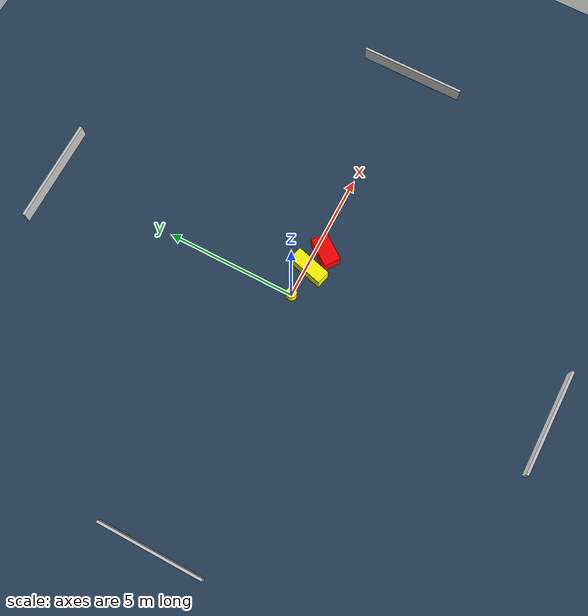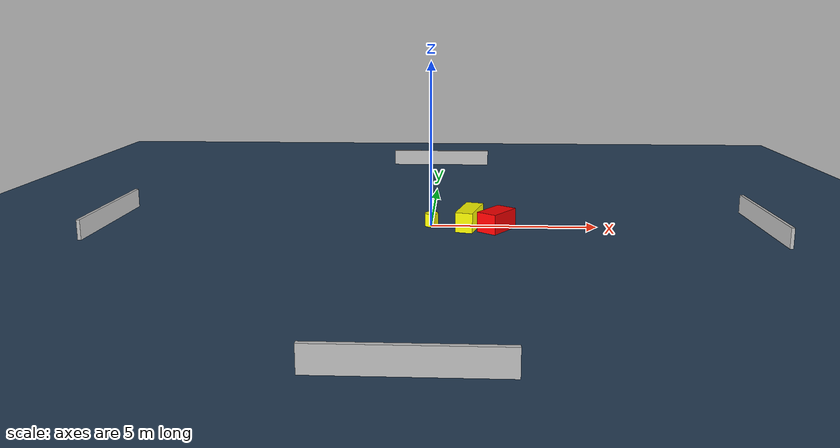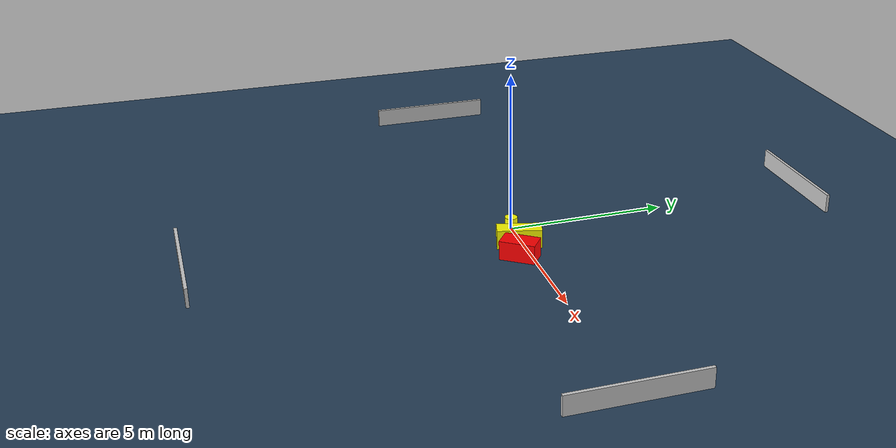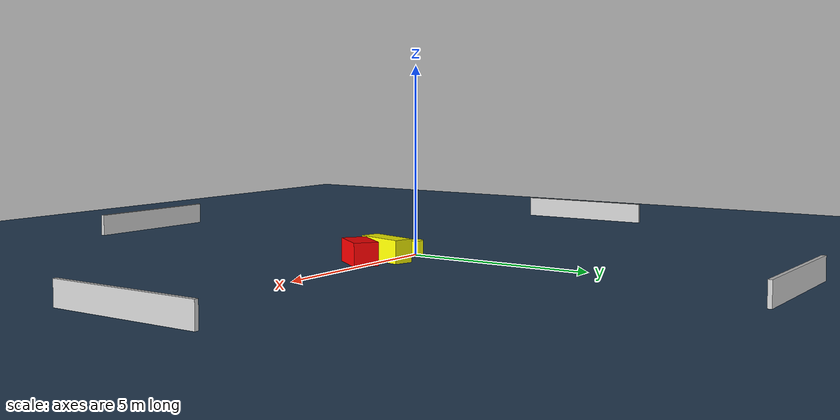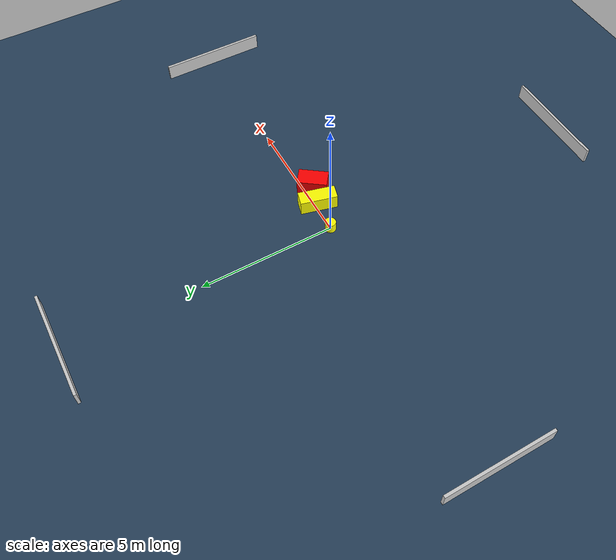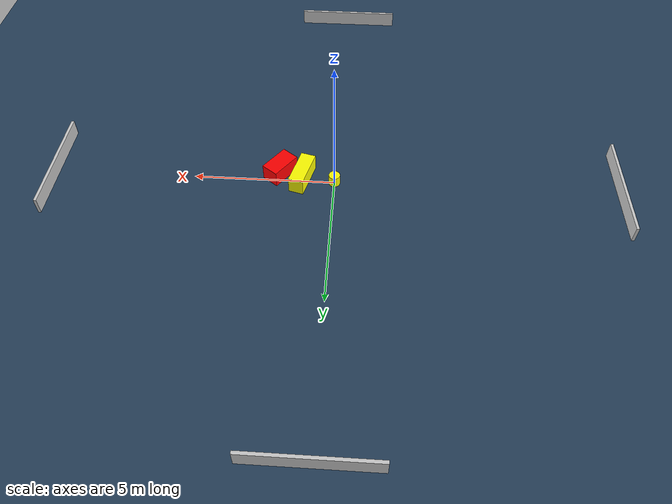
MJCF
<?xml version="1.0" ?>
<mujoco model="generated_environment">
  <option timestep="0.01" integrator="RK4" cone="elliptic"/>
  <default>
    <geom density="1"/>
  </default>
  <asset>
    <texture builtin="gradient" height="3072" name="skybox" rgb1="0.3 0.5 0.7" rgb2="0 0 0" type="skybox" width="512"/>
    <texture builtin="checker" height="300" name="groundplane" rgb1="0.2 0.3 0.4" rgb2="0.1 0.2 0.3" type="2d" width="300"/>
    <material name="groundplane" reflectance="0.2" texrepeat="5 5" texture="groundplane"/>
  </asset>
  <worldbody>
    <light dir="0 0 -1" directional="true" pos="0 0 1.5"/>
    <geom condim="3" friction="0.5 0.005 0.001" material="groundplane" name="floor" pos="0 0 0" size="0 0 0.05" type="plane"/>
    <body name="walls">
      <geom name="wall_1" condim="4" pos="-10.0 0.0 0.3" rgba="0.800000011920929 0.800000011920929 0.800000011920929 1.0" size="0.05 2.0 0.3" type="box"/>
      <geom name="wall_2" condim="4" pos="10.0 0.0 0.3" rgba="0.800000011920929 0.800000011920929 0.800000011920929 1.0" size="0.05 2.0 0.3" type="box"/>
      <geom name="wall_3" condim="4" pos="0.0 -10.0 0.3" rgba="0.800000011920929 0.800000011920929 0.800000011920929 1.0" size="2.0 0.05 0.3" type="box"/>
      <geom name="wall_4" condim="4" pos="0.0 10.0 0.3" rgba="0.800000011920929 0.800000011920929 0.800000011920929 1.0" size="2.0 0.05 0.3" type="box"/>
    </body>
    <body name="robot">
      <joint name="joint_x" type="slide" pos="0 0 0" axis="1 0 0"/>
      <joint name="joint_y" type="slide" pos="0 0 0" axis="0 1 0"/>
      <geom name="robot" type="cylinder" pos="0.0 0.0 0.2" size="0.2 0.2 0.0" mass="5.0" friction="1.0 0.005 0.0001" condim="4" rgba="1.0 1.0 0.0 1.0"/>
    </body>
    <body name="obstacle_1_movable">
      <geom name="obstacle_1_movable" condim="4" pos="1.153479418012471 -0.1173825381447669 0.3" euler="0 0 255.24374478887833" friction="0.0 0.005 0.001" rgba="1.0 1.0 0.0 1.0" size="0.6852363902499332 0.2639856295466805 0.3" type="box" mass="0.1"/>
      <joint type="free"/>
    </body>
    <body name="obstacle_2_static">
      <geom name="obstacle_2_static" condim="4" pos="1.9636574050274442 -0.36137445313253336 0.3" euler="0 0 53.81113024197753" friction="0.0 0.005 0.001" rgba="1.0 0.0 0.0 1.0" size="0.553570762415228 0.3178395203922436 0.3" type="box"/>
    </body>
  </worldbody>
  <actuator>
    <motor name="actuator_x" joint="joint_x" gear="1" ctrlrange="-1 1"/>
    <motor name="actuator_y" joint="joint_y" gear="1" ctrlrange="-1 1"/>
  </actuator>
</mujoco>
